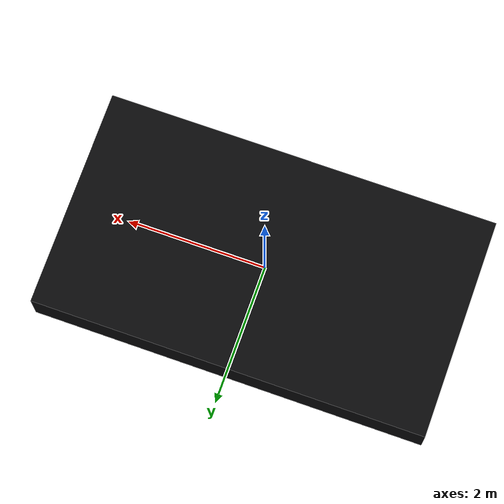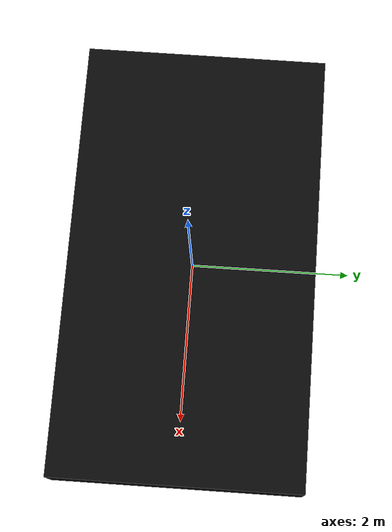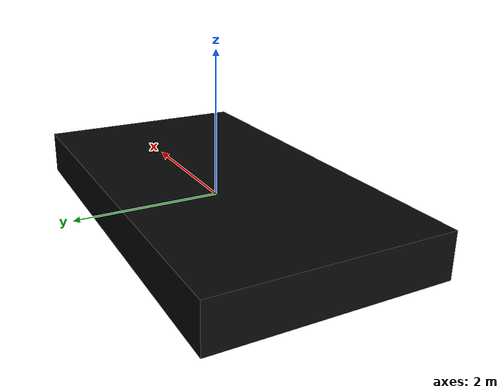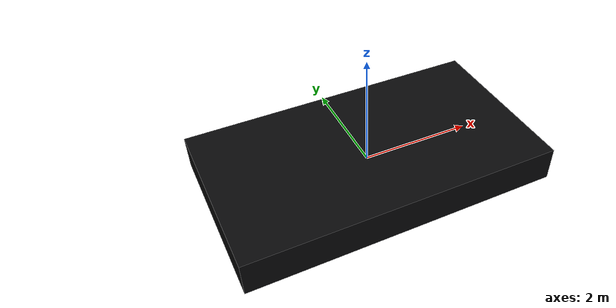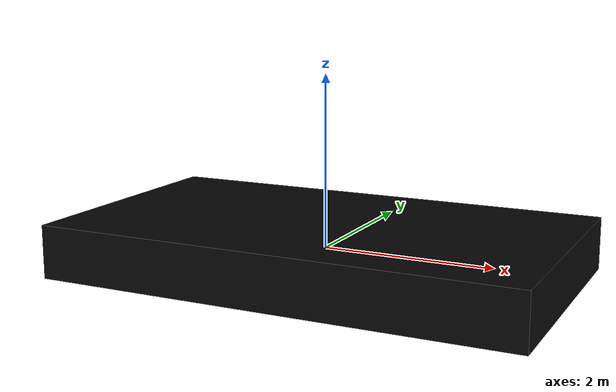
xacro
<?xml version="1.0"?>
<robot xmlns:xacro="http://www.ros.org/wiki/xacro" name="landing_boat">
  <link name="base_link">
    <visual>
      <origin xyz="0 0 0" rpy="0 0 0"/>
      <geometry>
        <box size="5.61 3.135 0.625"/>
      </geometry>
      <material name="boat_black">
        <color rgba="0.03 0.03 0.035 1"/>
      </material>
    </visual>
  </link>

  <link name="hull/front_lidar"/>
  <joint name="front_lidar_joint" type="fixed">
    <parent link="base_link"/>
    <child link="hull/front_lidar"/>
    <origin xyz="0.9075 0 1.5625" rpy="0 0 0"/>
  </joint>

  <link name="mid360_link"/>
  <joint name="mid360_joint" type="fixed">
    <parent link="base_link"/>
    <child link="mid360_link"/>
    <origin xyz="0.9075 0 1.5625" rpy="0 0 0"/>
  </joint>

  <link name="front_camera_link"/>
  <joint name="front_camera_joint" type="fixed">
    <parent link="base_link"/>
    <child link="front_camera_link"/>
    <origin xyz="2.31825 0 1.075" rpy="0 0 0"/>
  </joint>

  <link name="imu_link"/>
  <joint name="imu_joint" type="fixed">
    <parent link="base_link"/>
    <child link="imu_link"/>
    <origin xyz="0 0 0.5625" rpy="0 0 0"/>
  </joint>

  <link name="landing_pad_link"/>
  <joint name="landing_pad_joint" type="fixed">
    <parent link="base_link"/>
    <child link="landing_pad_link"/>
    <origin xyz="-1.518 0 0.56" rpy="0 0 0"/>
  </joint>
</robot>
